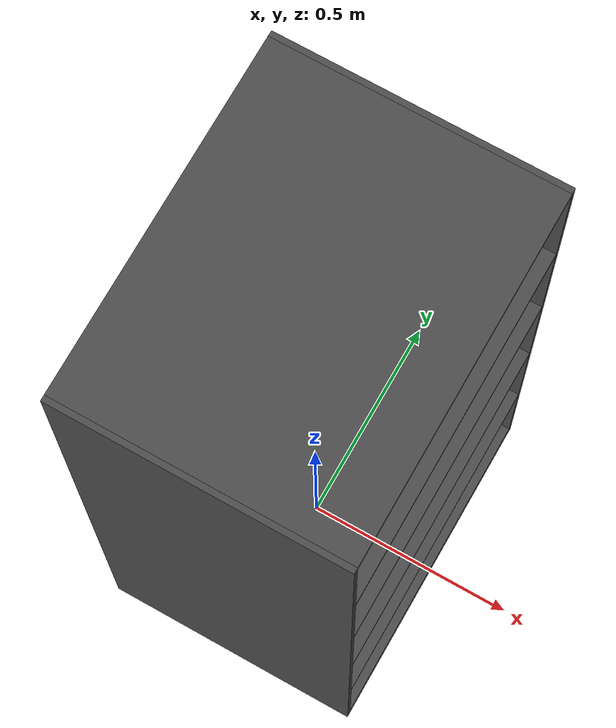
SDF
<?xml version='1.0'?>
<sdf version='1.6'>
  <model name='ahg_bookcase'>
    <static>1</static>
    <link name='link'>
      <pose frame=''>-0 0 0.009525 0 -0 0</pose>
      <gravity>1</gravity>

      <visual name='bottom_shelf_visual'>
        <pose frame=''>0 0 0.009525 0 -0 0</pose>
        <geometry>
          <box>
            <size>0.6096 0.762 0.0381</size>
          </box>
        </geometry>
        <material>
          <lighting>1</lighting>
            <script>
              <name>Gazebo/DarkGrey</name>
              <uri>file://media/materials/scripts/gazebo.material</uri>
            </script>
            <shader type='pixel'/>
	    <emissive>0.05 0.05 0.05 1</emissive>
        </material>
        <transparency>0</transparency>
        <cast_shadows>1</cast_shadows>
      </visual>

      <visual name='shelf_2_visual'>
        <pose frame=''>0 0 0.3048 0 -0 0</pose>
        <geometry>
          <box>
            <size>0.6096 0.762 0.0125</size>
          </box>
        </geometry>
        <material>
          <lighting>1</lighting>
            <script>
              <name>Gazebo/DarkGrey</name>
              <uri>file://media/materials/scripts/gazebo.material</uri>
            </script>
            <shader type='pixel'/>
	    <emissive>0.05 0.05 0.05 1</emissive>
        </material>
        <transparency>0</transparency>
        <cast_shadows>1</cast_shadows>
      </visual>

      <visual name='shelf_4_visual'>
        <pose frame=''>0 0 0.9144 0 -0 0</pose>
        <geometry>
          <box>
            <size>0.6096 0.762 0.0125</size>
          </box>
        </geometry>
        <material>
          <lighting>1</lighting>
            <script>
              <name>Gazebo/DarkGrey</name>
              <uri>file://media/materials/scripts/gazebo.material</uri>
            </script>
            <shader type='pixel'/>
	    <emissive>0.05 0.05 0.05 1</emissive>
        </material>
        <transparency>0</transparency>
        <cast_shadows>1</cast_shadows>
      </visual>

      <visual name='shelf_5_visual'>
        <pose frame=''>0 0 1.2192 0 -0 0</pose>
        <geometry>
          <box>
            <size>0.6096 0.762 0.0125</size>
          </box>
        </geometry>
        <material>
          <lighting>1</lighting>
            <script>
              <name>Gazebo/DarkGrey</name>
              <uri>file://media/materials/scripts/gazebo.material</uri>
            </script>
            <shader type='pixel'/>
	    <emissive>0.05 0.05 0.05 1</emissive>
        </material>
        <transparency>0</transparency>
        <cast_shadows>1</cast_shadows>
      </visual>

      <visual name='case_top_visual'>
        <pose frame=''>0 0 1.524 0 -0 0</pose>
        <geometry>
          <box>
            <size>0.6096 0.762 0.0125</size>
          </box>
        </geometry>
        <material>
          <lighting>1</lighting>
            <script>
              <name>Gazebo/DarkGrey</name>
              <uri>file://media/materials/scripts/gazebo.material</uri>
            </script>
            <shader type='pixel'/>
	    <emissive>0.05 0.05 0.05 1</emissive>
        </material>
        <transparency>0</transparency>
        <cast_shadows>1</cast_shadows>
      </visual>

      <visual name='case_left_visual'>
        <pose frame=''>0 -0.38725 0.76007 0 -0 0</pose>
        <geometry>
          <box>
            <size>0.6096 0.0125 1.53978</size>
          </box>
        </geometry>
        <material>
          <lighting>1</lighting>
            <script>
              <name>Gazebo/DarkGrey</name>
              <uri>file://media/materials/scripts/gazebo.material</uri>
            </script>
            <shader type='pixel'/>
	    <emissive>0.05 0.05 0.05 1</emissive>
        </material>
        <transparency>0</transparency>
        <cast_shadows>1</cast_shadows>
      </visual>

      <visual name='case_back_visual'>
        <pose frame=''> -0.29855 0 0.75575 0 -0 0</pose>
        <geometry>
          <box>
            <size>0.0125 0.7745 1.524</size>
          </box>
        </geometry>
        <material>
          <lighting>1</lighting>
            <script>
              <name>Gazebo/DarkGrey</name>
              <uri>file://media/materials/scripts/gazebo.material</uri>
            </script>
            <shader type='pixel'/>
	    <emissive>0.05 0.05 0.05 1</emissive>
        </material>
        <transparency>0</transparency>
        <cast_shadows>1</cast_shadows>
      </visual>

      <visual name='case_right_visual'>
        <pose frame=''>0 0.38725 0.76007 0 -0 0</pose>
        <geometry>
          <box>
            <size>0.6096 0.0125 1.53978</size>
          </box>
        </geometry>
        <material>
          <lighting>1</lighting>
            <script>
              <name>Gazebo/DarkGrey</name>
              <uri>file://media/materials/scripts/gazebo.material</uri>
            </script>
            <shader type='pixel'/>
	    <emissive>0.05 0.05 0.05 1</emissive>
        </material>
        <transparency>0</transparency>
        <cast_shadows>1</cast_shadows>
      </visual>

      <visual name='shelf_3_visual'>
        <pose frame=''>0 0 0.6096 0 -0 0</pose>
        <geometry>
          <box>
            <size>0.6096 0.762 0.0125</size>
          </box>
        </geometry>
        <material>
          <lighting>1</lighting>
            <script>
              <name>Gazebo/DarkGrey</name>
              <uri>file://media/materials/scripts/gazebo.material</uri>
            </script>
            <shader type='pixel'/>
	    <emissive>0.05 0.05 0.05 1</emissive>
        </material>
        <transparency>0</transparency>
        <cast_shadows>1</cast_shadows>
      </visual>

      <collision name='shelf_5'>
        <pose frame=''>0 0 1.2192 0 -0 0</pose>
        <geometry>
          <box>
            <size>0.6096 0.762 0.0125</size>
          </box>
        </geometry>
      </collision>

      <collision name='case_back'>
        <pose frame=''>-0.29855 0 0.75575 0 -0 0</pose>
        <geometry>
          <box>
            <size>0.0125 0.7745 1.524</size>
          </box>
        </geometry>
      </collision>

      <collision name='case_top'>
        <pose frame=''>0 0 1.524 0 -0 0</pose>
        <geometry>
          <box>
            <size>0.6096 0.762 0.0125</size>
          </box>
        </geometry>
      </collision>

      <collision name='case_left'>
        <pose frame=''>0 -0.38725 0.76007 0 -0 0</pose>
        <geometry>
          <box>
            <size>0.6096 0.0125 1.53978</size>
          </box>
        </geometry>
      </collision>

      <collision name='shelf_3'>
        <pose frame=''>0 0 0.6096 0 -0 0</pose>
        <geometry>
          <box>
            <size>0.6096 0.762 0.0125</size>
          </box>
        </geometry>
      </collision>

      <collision name='shelf_4'>
        <pose frame=''>0 0 0.9144 0 -0 0</pose>
        <geometry>
          <box>
            <size>0.6096 0.762 0.0125</size>
          </box>
        </geometry>
      </collision>

      <collision name='shelf_2'>
        <pose frame=''>0 0 0.3048 0 -0 0</pose>
        <geometry>
          <box>
            <size>0.6096 0.762 0.0125</size>
          </box>
        </geometry>
      </collision>

      <collision name='case_right'>
        <pose frame=''>0 0.38725 0.76007 0 -0 0</pose>
        <geometry>
          <box>
            <size>0.6096 0.0125 1.53978</size>
          </box>
        </geometry>
      </collision>

    </link>
    <allow_auto_disable>1</allow_auto_disable>
  </model>
</sdf>
